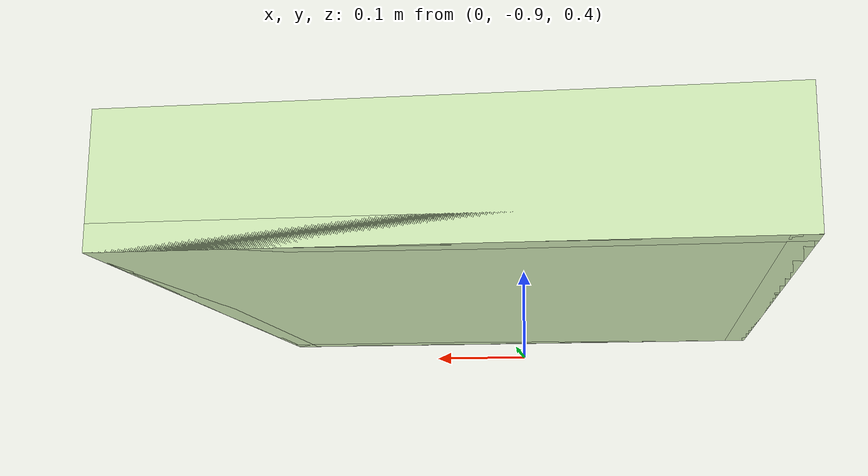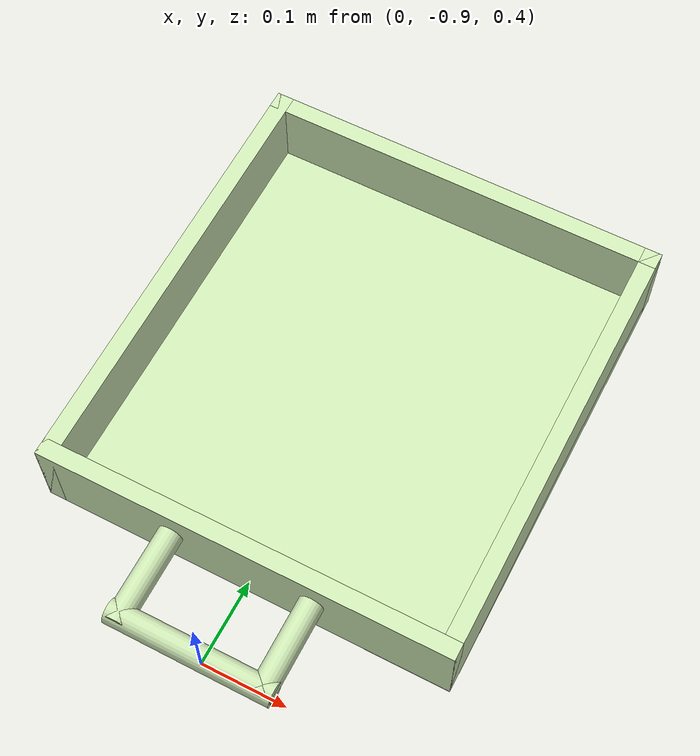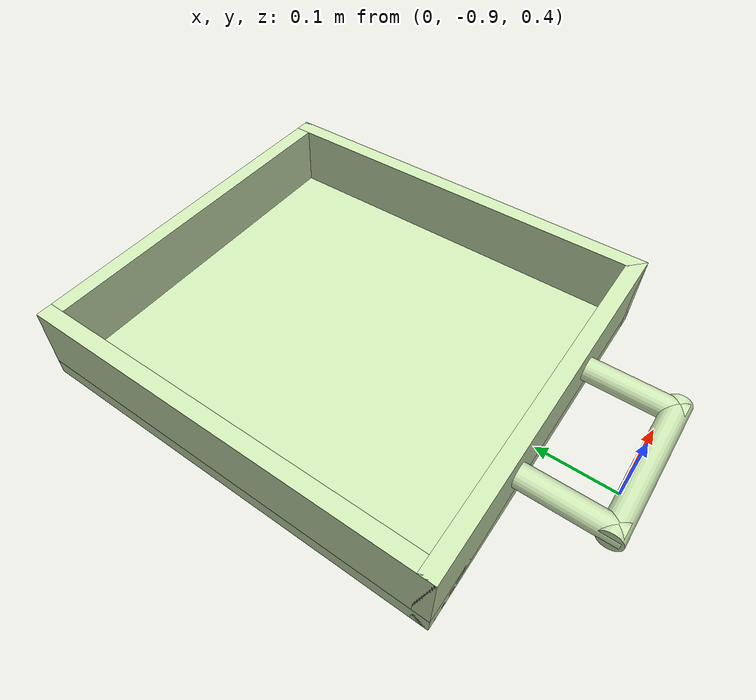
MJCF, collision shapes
<mujoco>
    <visual>
        <global offwidth="4072" offheight="2262" />
        <quality shadowsize="2048" offsamples="8" />
        <headlight diffuse="0.6 0.6 0.6" specular="0 0 0" />
        <map fogstart="6" znear="0.01" />
        <scale forcewidth="0.01" framelength="0.3" framewidth="0.01" />
    </visual>
    <default class="main1">
        <default class="viz_stl_Metal_LR">
            <geom type="mesh" group="1" material="M_Metal_LR" />
        </default>
        <default class="viz_stl_Wood_cube_LR">
            <geom type="mesh" group="1" material="M_Wood_cube_LR" />
        </default>
        <default class="viz_stl_Wood_2d_LR">
            <geom type="mesh" group="1" material="M_Wood_2d_LR" />
        </default>
        <default class="viz_stl_Fabric_cube_LR">
            <geom type="mesh" group="1" material="M_Fabric_cube_LR" />
        </default>
        <default class="viz_stl_Fabric_2d_LR">
            <geom type="mesh" group="1" material="M_Fabric_2d_LR" />
        </default>
        <default class="viz_stl_Painting_cube_LR">
            <geom type="mesh" group="1" material="M_Painting_cube_LR" />
        </default>
        <default class="viz_drawer">
            <joint limited="true" armature="0.1" damping="2" frictionloss="5" />
            <geom contype="0" group="3" rgba="1 0 0 1" />
        </default>
        <default class="viz_body">
            <joint limited="true" armature="0.01" damping="1" frictionloss="0.5" />
            <geom contype="0" group="4" rgba="0 1 0 1" />
        </default>
    </default>
    <asset>
        <texture type="cube" name="T_Wood_cube_LR" file="../playroom/textures/Surface_wood_chipboard.jpg.png" />
        <texture type="2d" name="T_Wood_2d_LR" file="../playroom/textures/Surface_wood_chipboard.jpg.png" />
        <texture type="cube" name="T_Metal_LR" file="../playroom/textures/Texture_P7220210.JPG.png" />
        <texture type="cube" name="T_Fabric_cube_LR" file="../playroom/textures/Blue_Gray_knit_texture.jpg.png" />
        <texture type="2d" name="T_Fabric_2d_LR" file="../playroom/textures/Fabric_length_(AM_842431-1).jpg.png" />
        <texture type="cube" name="T_Painting_cube_LR" file="../playroom/textures/Coloured,_textured_craft_card_edit.jpg.png" />
        <texture type="2d" name="groundplane" builtin="checker" rgb1="0.2 0.3 0.4" rgb2="0.1 0.2 0.3" width="200" height="200" />
        <texture type="skybox" name="skybox" builtin="gradient" mark="random" rgb1="0.4 0.6 0.8" rgb2="0 0 0" markrgb="1 1 1" width="800" height="4800" />
        <material name="M_Fabric_cube_LR" texture="T_Fabric_cube_LR" shininess="0" />
        <material name="M_Fabric_2d_LR" texture="T_Fabric_2d_LR" texuniform="true" texrepeat="3 3" shininess="0" rgba="0.2 0.2 0.2 1" />
        <material name="groundplane" texture="groundplane" texrepeat="20 20" />
        <material name="M_Wood_cube_LR" texture="T_Wood_cube_LR" shininess="0.2" reflectance="0.3" rgba="0.8 0.8 0.8 1" />
        <material name="M_Wood_2d_LR" texture="T_Wood_2d_LR" shininess="0.2" reflectance="0.3" rgba="0.8 0.8 0.8 1" />
        <material name="M_Metal_LR" texture="T_Metal_LR" texrepeat="3 3" reflectance="0.7" />
        <material name="M_Painting_cube_LR" texture="T_Painting_cube_LR" shininess="0.2" reflectance="0.3" />
        <material name="MatViz" specular="1" shininess="0.1" reflectance="0.5" rgba="0.07 0.07 0.1 1" />
        <mesh name="SSC_Body" file="../playroom/meshes//SSC_Body.stl" scale="0.01 0.01 0.01" />
        <mesh name="SSC_Stand" file="../playroom/meshes//SSC_Stand.stl" scale="0.01 0.01 0.01" />
        <mesh name="Table_Top" file="../playroom/meshes//Table_Top.stl" scale="0.01 0.01 0.01" />
        <mesh name="Table_Bottom" file="../playroom/meshes//Table_Bottom.stl" scale="0.01 0.01 0.01" />
        <mesh name="Doorway_Top" file="../playroom/meshes//Doorway_Top.stl" scale="0.01 0.01 0.01" />
        <mesh name="Doorway_Bottom" file="../playroom/meshes//Doorway_Bottom.stl" scale="0.01 0.01 0.01" />
        <mesh name="Window_Top" file="../playroom/meshes//Window_Top.stl" scale="0.01 0.01 0.01" />
        <mesh name="Window_Bottom" file="../playroom/meshes//Window_Bottom.stl" scale="0.01 0.01 0.01" />
        <mesh name="Wall_Top" file="../playroom/meshes//Wall_Top.stl" scale="0.01 0.01 0.01" />
        <mesh name="Wall_Bottom" file="../playroom/meshes//Wall_Bottom.stl" scale="0.01 0.01 0.01" />
        <mesh name="Lamp_Top" file="../playroom/meshes//Lamp_Top.stl" scale="0.01 0.01 0.01" />
        <mesh name="Lamp_Stand" file="../playroom/meshes//Lamp_Stand.stl" scale="0.01 0.01 0.01" />
        <mesh name="Painting_Canvas" file="../playroom/meshes//Painting_Canvas.stl" scale="0.01 0.01 0.01" />
        <mesh name="Painting_Frame" file="../playroom/meshes//Painting_Frame.stl" scale="0.01 0.01 0.01" />
        <mesh name="StudyTable" file="../playroom/meshes//StudyTable.stl" scale="0.01 0.01 0.01" />
        <mesh name="Drawer_Wood" file="../playroom/meshes//Drawer_Wood.stl" scale="0.01 0.01 0.01" />
        <mesh name="Drawer_Handle" file="../playroom/meshes//Drawer_Handle.stl" scale="0.01 0.01 0.01" />
        <mesh name="Slide_Wood" file="../playroom/meshes//Slide_Wood.stl" scale="0.01 0.01 0.01" />
        <mesh name="Slide_Handle" file="../playroom/meshes//Slide_Handle.stl" scale="0.01 0.01 0.01" />
        <mesh name="BlockBin" file="../playroom/meshes//BlockBin.stl" scale="0.01 0.01 0.01" />
    </asset>
    <worldbody>
        <body name="StudyTable_Drawer" childclass="viz_drawer" pos="0 -0.55 0.455">
            <inertial pos="0 0 0" mass="2" diaginertia="0.001 0.001 0.001" />
            <joint pos="0 0 0" axis="0 1 0" type="slide" range="-0.48 0" />
            <geom class="viz_stl_Wood_cube_LR" quat="0.000563312 -0.000562864 0.706825 0.707388" contype="0" conaffinity="0" mesh="Drawer_Wood" />
            <geom class="viz_stl_Metal_LR" quat="0.000563312 -0.000562864 0.706825 0.707388" contype="0" conaffinity="0" mesh="Drawer_Handle" />
            <geom size="0.24 0.26 0.01" pos="0 0 -0.04" type="box" rgba="0.8 0.9 0.7 1" />
            <geom size="0.24 0.01 0.05" pos="0 0.25 0" type="box" rgba="0.8 0.9 0.7 1" />
            <geom size="0.24 0.01 0.05" pos="0 -0.25 0" type="box" rgba="0.8 0.9 0.7 1" />
            <geom size="0.01 0.26 0.05" pos="-0.23 0 0" type="box" rgba="0.8 0.9 0.7 1" />
            <geom size="0.01 0.26 0.05" pos="0.23 0 0" type="box" rgba="0.8 0.9 0.7 1" />
            <geom size="0.014 0.055" pos="0.08203 -0.315 0.01" quat="0.707388 0.706825 0 0" type="cylinder" rgba="0.8 0.9 0.7 1" />
            <geom size="0.014 0.055" pos="-0.08203 -0.315 0.01" quat="0.707388 0.706825 0 0" type="cylinder" rgba="0.8 0.9 0.7 1" />
            <geom size="0.014 0.095" pos="0 -0.36 0.01" quat="0.707388 0 0.706825 0" type="cylinder" rgba="0.8 0.9 0.7 1" />
            <site name="StudyTable_Drawer" pos="0 0 0" quat="0 0 0 1" size="5e-05" />
        </body>
    </worldbody>
</mujoco>
